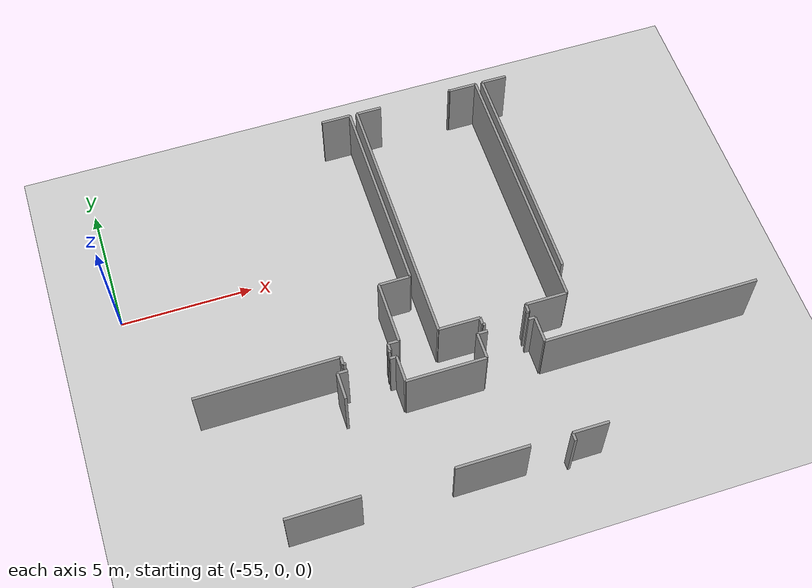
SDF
<sdf version="1.6">
 <world name="default">
  <model name="ground_plane">
   <static>1</static>
   <link name="link">
    <collision name="collision">
     <geometry><plane><normal>0 0 1</normal><size>100 100</size></plane></geometry>
     <surface><friction><ode><mu>100</mu><mu2>50</mu2></ode></friction></surface>
    </collision>
    <visual name="visual">
     <cast_shadows>0</cast_shadows>
     <geometry><plane><normal>0 0 1</normal><size>100 100</size></plane></geometry>
     <material>
      <script><uri>file://media/materials/scripts/gazebo.material</uri><name>Gazebo/Grey</name></script>
     </material>
    </visual>
   </link>
  </model>
  <model name="50055638">
   <static>1</static>
   <link name="Wall_23">
    <collision name="Wall_23_Collision">
     <geometry><box><size>1.12634167731 0.1 2.5</size></box></geometry>
     <pose>0.563170838656 0 1.25 0 0 0</pose>
    </collision>
    <visual name="Wall_23_Visual">
     <pose>0.563170838656 0 1.25 0 0 0</pose>
     <geometry><box><size>1.12634167731 0.1 2.5</size></box></geometry>
     <material>
      <script><uri>file://media/materials/scripts/gazebo.material</uri><name>Gazebo/Grey</name></script>
      <ambient>1 1 1 1</ambient>
     </material>
    </visual>
    <pose>25.0025737327 -15.9551725672 0 0 0 0.0</pose>
   </link>
   <link name="Wall_24">
    <collision name="Wall_24_Collision">
     <geometry><box><size>7.62129906774 0.1 2.5</size></box></geometry>
     <pose>3.81064953387 0 1.25 0 0 0</pose>
    </collision>
    <visual name="Wall_24_Visual">
     <pose>3.81064953387 0 1.25 0 0 0</pose>
     <geometry><box><size>7.62129906774 0.1 2.5</size></box></geometry>
     <material>
      <script><uri>file://media/materials/scripts/gazebo.material</uri><name>Gazebo/Grey</name></script>
      <ambient>1 1 1 1</ambient>
     </material>
    </visual>
    <pose>26.12891541 -15.9551725672 0 0 0 -1.57079632679</pose>
   </link>
   <link name="Wall_25">
    <collision name="Wall_25_Collision">
     <geometry><box><size>1.18734867405 0.1 2.5</size></box></geometry>
     <pose>0.593674337026 0 1.25 0 0 0</pose>
    </collision>
    <visual name="Wall_25_Visual">
     <pose>0.593674337026 0 1.25 0 0 0</pose>
     <geometry><box><size>1.18734867405 0.1 2.5</size></box></geometry>
     <material>
      <script><uri>file://media/materials/scripts/gazebo.material</uri><name>Gazebo/Grey</name></script>
      <ambient>1 1 1 1</ambient>
     </material>
    </visual>
    <pose>26.12891541 -23.5764716349 0 0 0 3.14159265359</pose>
   </link>
   <link name="Wall_26">
    <collision name="Wall_26_Collision">
     <geometry><box><size>2.39058458684 0.1 2.5</size></box></geometry>
     <pose>1.19529229342 0 1.25 0 0 0</pose>
    </collision>
    <visual name="Wall_26_Visual">
     <pose>1.19529229342 0 1.25 0 0 0</pose>
     <geometry><box><size>2.39058458684 0.1 2.5</size></box></geometry>
     <material>
      <script><uri>file://media/materials/scripts/gazebo.material</uri><name>Gazebo/Grey</name></script>
      <ambient>1 1 1 1</ambient>
     </material>
    </visual>
    <pose>24.9415667359 -23.5764716349 0 0 0 -1.57079632679</pose>
   </link>
   <link name="Wall_27">
    <collision name="Wall_27_Collision">
     <geometry><box><size>0.404552647132 0.1 2.5</size></box></geometry>
     <pose>0.202276323566 0 1.25 0 0 0</pose>
    </collision>
    <visual name="Wall_27_Visual">
     <pose>0.202276323566 0 1.25 0 0 0</pose>
     <geometry><box><size>0.404552647132 0.1 2.5</size></box></geometry>
     <material>
      <script><uri>file://media/materials/scripts/gazebo.material</uri><name>Gazebo/Grey</name></script>
      <ambient>1 1 1 1</ambient>
     </material>
    </visual>
    <pose>24.9415667359 -25.9670562218 0 0 0 3.14159265359</pose>
   </link>
   <link name="Wall_28">
    <collision name="Wall_28_Collision">
     <geometry><box><size>0.298425892386 0.1 2.5</size></box></geometry>
     <pose>0.149212946193 0 1.25 0 0 0</pose>
    </collision>
    <visual name="Wall_28_Visual">
     <pose>0.149212946193 0 1.25 0 0 0</pose>
     <geometry><box><size>0.298425892386 0.1 2.5</size></box></geometry>
     <material>
      <script><uri>file://media/materials/scripts/gazebo.material</uri><name>Gazebo/Grey</name></script>
      <ambient>1 1 1 1</ambient>
     </material>
    </visual>
    <pose>24.5370140888 -25.9670562218 0 0 0 -1.57079632679</pose>
   </link>
   <link name="Wall_29">
    <collision name="Wall_29_Collision">
     <geometry><box><size>0.0911292013803 0.1 2.5</size></box></geometry>
     <pose>0.0455646006901 0 1.25 0 0 0</pose>
    </collision>
    <visual name="Wall_29_Visual">
     <pose>0.0455646006901 0 1.25 0 0 0</pose>
     <geometry><box><size>0.0911292013803 0.1 2.5</size></box></geometry>
     <material>
      <script><uri>file://media/materials/scripts/gazebo.material</uri><name>Gazebo/Grey</name></script>
      <ambient>1 1 1 1</ambient>
     </material>
    </visual>
    <pose>24.5370140888 -26.2654821141 0 0 0 3.14159265359</pose>
   </link>
   <link name="Wall_30">
    <collision name="Wall_30_Collision">
     <geometry><box><size>0.104728677737 0.1 2.5</size></box></geometry>
     <pose>0.0523643388684 0 1.25 0 0 0</pose>
    </collision>
    <visual name="Wall_30_Visual">
     <pose>0.0523643388684 0 1.25 0 0 0</pose>
     <geometry><box><size>0.104728677737 0.1 2.5</size></box></geometry>
     <material>
      <script><uri>file://media/materials/scripts/gazebo.material</uri><name>Gazebo/Grey</name></script>
      <ambient>1 1 1 1</ambient>
     </material>
    </visual>
    <pose>22.9052040239 -26.2654821141 0 0 0 3.14159265359</pose>
   </link>
   <link name="Wall_31">
    <collision name="Wall_31_Collision">
     <geometry><box><size>0.300459458944 0.1 2.5</size></box></geometry>
     <pose>0.150229729472 0 1.25 0 0 0</pose>
    </collision>
    <visual name="Wall_31_Visual">
     <pose>0.150229729472 0 1.25 0 0 0</pose>
     <geometry><box><size>0.300459458944 0.1 2.5</size></box></geometry>
     <material>
      <script><uri>file://media/materials/scripts/gazebo.material</uri><name>Gazebo/Grey</name></script>
      <ambient>1 1 1 1</ambient>
     </material>
    </visual>
    <pose>22.8004753462 -26.2654821141 0 0 0 1.57079632679</pose>
   </link>
   <link name="Wall_32">
    <collision name="Wall_32_Collision">
     <geometry><box><size>5.3477716559 0.1 2.5</size></box></geometry>
     <pose>2.67388582795 0 1.25 0 0 0</pose>
    </collision>
    <visual name="Wall_32_Visual">
     <pose>2.67388582795 0 1.25 0 0 0</pose>
     <geometry><box><size>5.3477716559 0.1 2.5</size></box></geometry>
     <material>
      <script><uri>file://media/materials/scripts/gazebo.material</uri><name>Gazebo/Grey</name></script>
      <ambient>1 1 1 1</ambient>
     </material>
    </visual>
    <pose>22.8004753462 -25.9650226552 0 0 0 3.14159265359</pose>
   </link>
   <link name="Wall_133">
    <collision name="Wall_133_Collision">
     <geometry><box><size>10.014044319 0.1 2.5</size></box></geometry>
     <pose>5.00702215952 0 1.25 0 0 0</pose>
    </collision>
    <visual name="Wall_133_Visual">
     <pose>5.00702215952 0 1.25 0 0 0</pose>
     <geometry><box><size>10.014044319 0.1 2.5</size></box></geometry>
     <material>
      <script><uri>file://media/materials/scripts/gazebo.material</uri><name>Gazebo/Grey</name></script>
      <ambient>1 1 1 1</ambient>
     </material>
    </visual>
    <pose>26.4117082595 -25.9676917113 0 0 0 1.57079632679</pose>
   </link>
   <link name="Wall_134">
    <collision name="Wall_134_Collision">
     <geometry><box><size>0.966325408779 0.1 2.5</size></box></geometry>
     <pose>0.483162704389 0 1.25 0 0 0</pose>
    </collision>
    <visual name="Wall_134_Visual">
     <pose>0.483162704389 0 1.25 0 0 0</pose>
     <geometry><box><size>0.966325408779 0.1 2.5</size></box></geometry>
     <material>
      <script><uri>file://media/materials/scripts/gazebo.material</uri><name>Gazebo/Grey</name></script>
      <ambient>1 1 1 1</ambient>
     </material>
    </visual>
    <pose>26.4117082595 -15.9536473923 0 0 0 0.0</pose>
   </link>
   <link name="Wall_135">
    <collision name="Wall_135_Collision">
     <geometry><box><size>0.0665484704653 0.1 2.5</size></box></geometry>
     <pose>0.0332742352326 0 1.25 0 0 0</pose>
    </collision>
    <visual name="Wall_135_Visual">
     <pose>0.0332742352326 0 1.25 0 0 0</pose>
     <geometry><box><size>0.0665484704653 0.1 2.5</size></box></geometry>
     <material>
      <script><uri>file://media/materials/scripts/gazebo.material</uri><name>Gazebo/Grey</name></script>
      <ambient>1 1 1 1</ambient>
     </material>
    </visual>
    <pose>30.1576649572 -15.9536473923 0 0 0 -0.532886069253</pose>
   </link>
   <link name="Wall_136">
    <collision name="Wall_136_Collision">
     <geometry><box><size>1.06546177848 0.1 2.5</size></box></geometry>
     <pose>0.532730889241 0 1.25 0 0 0</pose>
    </collision>
    <visual name="Wall_136_Visual">
     <pose>0.532730889241 0 1.25 0 0 0</pose>
     <geometry><box><size>1.06546177848 0.1 2.5</size></box></geometry>
     <material>
      <script><uri>file://media/materials/scripts/gazebo.material</uri><name>Gazebo/Grey</name></script>
      <ambient>1 1 1 1</ambient>
     </material>
    </visual>
    <pose>30.2149861146 -15.9874554363 0 0 0 0.0</pose>
   </link>
   <link name="Wall_137">
    <collision name="Wall_137_Collision">
     <geometry><box><size>9.97032263804 0.1 2.5</size></box></geometry>
     <pose>4.98516131902 0 1.25 0 0 0</pose>
    </collision>
    <visual name="Wall_137_Visual">
     <pose>4.98516131902 0 1.25 0 0 0</pose>
     <geometry><box><size>9.97032263804 0.1 2.5</size></box></geometry>
     <material>
      <script><uri>file://media/materials/scripts/gazebo.material</uri><name>Gazebo/Grey</name></script>
      <ambient>1 1 1 1</ambient>
     </material>
    </visual>
    <pose>31.280447893 -15.9874554363 0 0 0 -1.57079632679</pose>
   </link>
   <link name="Wall_138">
    <collision name="Wall_138_Collision">
     <geometry><box><size>1.57575988663 0.1 2.5</size></box></geometry>
     <pose>0.787879943314 0 1.25 0 0 0</pose>
    </collision>
    <visual name="Wall_138_Visual">
     <pose>0.787879943314 0 1.25 0 0 0</pose>
     <geometry><box><size>1.57575988663 0.1 2.5</size></box></geometry>
     <material>
      <script><uri>file://media/materials/scripts/gazebo.material</uri><name>Gazebo/Grey</name></script>
      <ambient>1 1 1 1</ambient>
     </material>
    </visual>
    <pose>31.280447893 -25.9577780743 0 0 0 3.14159265359</pose>
   </link>
   <link name="Wall_139">
    <collision name="Wall_139_Collision">
     <geometry><box><size>0.314058935301 0.1 2.5</size></box></geometry>
     <pose>0.15702946765 0 1.25 0 0 0</pose>
    </collision>
    <visual name="Wall_139_Visual">
     <pose>0.15702946765 0 1.25 0 0 0</pose>
     <geometry><box><size>0.314058935301 0.1 2.5</size></box></geometry>
     <material>
      <script><uri>file://media/materials/scripts/gazebo.material</uri><name>Gazebo/Grey</name></script>
      <ambient>1 1 1 1</ambient>
     </material>
    </visual>
    <pose>29.7046880064 -25.9577780743 0 0 0 -1.57079632679</pose>
   </link>
   <link name="Wall_140">
    <collision name="Wall_140_Collision">
     <geometry><box><size>0.105872558926 0.1 2.5</size></box></geometry>
     <pose>0.0529362794629 0 1.25 0 0 0</pose>
    </collision>
    <visual name="Wall_140_Visual">
     <pose>0.0529362794629 0 1.25 0 0 0</pose>
     <geometry><box><size>0.105872558926 0.1 2.5</size></box></geometry>
     <material>
      <script><uri>file://media/materials/scripts/gazebo.material</uri><name>Gazebo/Grey</name></script>
      <ambient>1 1 1 1</ambient>
     </material>
    </visual>
    <pose>29.7046880064 -26.2718370096 0 0 0 3.14159265359</pose>
   </link>
   <link name="Wall_141">
    <collision name="Wall_141_Collision">
     <geometry><box><size>0.0955776282259 0.1 2.5</size></box></geometry>
     <pose>0.047788814113 0 1.25 0 0 0</pose>
    </collision>
    <visual name="Wall_141_Visual">
     <pose>0.047788814113 0 1.25 0 0 0</pose>
     <geometry><box><size>0.0955776282259 0.1 2.5</size></box></geometry>
     <material>
      <script><uri>file://media/materials/scripts/gazebo.material</uri><name>Gazebo/Grey</name></script>
      <ambient>1 1 1 1</ambient>
     </material>
    </visual>
    <pose>28.0648707732 -26.2718370096 0 0 0 3.14159265359</pose>
   </link>
   <link name="Wall_142">
    <collision name="Wall_142_Collision">
     <geometry><box><size>0.298171696566 0.1 2.5</size></box></geometry>
     <pose>0.149085848283 0 1.25 0 0 0</pose>
    </collision>
    <visual name="Wall_142_Visual">
     <pose>0.149085848283 0 1.25 0 0 0</pose>
     <geometry><box><size>0.298171696566 0.1 2.5</size></box></geometry>
     <material>
      <script><uri>file://media/materials/scripts/gazebo.material</uri><name>Gazebo/Grey</name></script>
      <ambient>1 1 1 1</ambient>
     </material>
    </visual>
    <pose>27.969293145 -26.2718370096 0 0 0 1.57079632679</pose>
   </link>
   <link name="Wall_143">
    <collision name="Wall_143_Collision">
     <geometry><box><size>1.55759634036 0.1 2.5</size></box></geometry>
     <pose>0.778798170181 0 1.25 0 0 0</pose>
    </collision>
    <visual name="Wall_143_Visual">
     <pose>0.778798170181 0 1.25 0 0 0</pose>
     <geometry><box><size>1.55759634036 0.1 2.5</size></box></geometry>
     <material>
      <script><uri>file://media/materials/scripts/gazebo.material</uri><name>Gazebo/Grey</name></script>
      <ambient>1 1 1 1</ambient>
     </material>
    </visual>
    <pose>27.969293145 -25.9736653131 0 0 0 3.13775750307</pose>
   </link>
   <link name="Wall_144">
    <collision name="Wall_144_Collision">
     <geometry><box><size>8.8165278122 0.1 2.5</size></box></geometry>
     <pose>4.4082639061 0 1.25 0 0 0</pose>
    </collision>
    <visual name="Wall_144_Visual">
     <pose>4.4082639061 0 1.25 0 0 0</pose>
     <geometry><box><size>8.8165278122 0.1 2.5</size></box></geometry>
     <material>
      <script><uri>file://media/materials/scripts/gazebo.material</uri><name>Gazebo/Grey</name></script>
      <ambient>1 1 1 1</ambient>
     </material>
    </visual>
    <pose>31.5561232596 -24.7980096467 0 0 0 1.57079632679</pose>
   </link>
   <link name="Wall_145">
    <collision name="Wall_145_Collision">
     <geometry><box><size>0.980560374685 0.1 2.5</size></box></geometry>
     <pose>0.490280187342 0 1.25 0 0 0</pose>
    </collision>
    <visual name="Wall_145_Visual">
     <pose>0.490280187342 0 1.25 0 0 0</pose>
     <geometry><box><size>0.980560374685 0.1 2.5</size></box></geometry>
     <material>
      <script><uri>file://media/materials/scripts/gazebo.material</uri><name>Gazebo/Grey</name></script>
      <ambient>1 1 1 1</ambient>
     </material>
    </visual>
    <pose>31.5561232596 -15.9814818345 0 0 0 0.0</pose>
   </link>
   <link name="Wall_180">
    <collision name="Wall_180_Collision">
     <geometry><box><size>1.01818135601 0.1 2.5</size></box></geometry>
     <pose>0.509090678004 0 1.25 0 0 0</pose>
    </collision>
    <visual name="Wall_180_Visual">
     <pose>0.509090678004 0 1.25 0 0 0</pose>
     <geometry><box><size>1.01818135601 0.1 2.5</size></box></geometry>
     <material>
      <script><uri>file://media/materials/scripts/gazebo.material</uri><name>Gazebo/Grey</name></script>
      <ambient>1 1 1 1</ambient>
     </material>
    </visual>
    <pose>22.5133611678 -27.5618807949 0 0 0 1.57079632679</pose>
   </link>
   <link name="Wall_181">
    <collision name="Wall_181_Collision">
     <geometry><box><size>0.373667855032 0.1 2.5</size></box></geometry>
     <pose>0.186833927516 0 1.25 0 0 0</pose>
    </collision>
    <visual name="Wall_181_Visual">
     <pose>0.186833927516 0 1.25 0 0 0</pose>
     <geometry><box><size>0.373667855032 0.1 2.5</size></box></geometry>
     <material>
      <script><uri>file://media/materials/scripts/gazebo.material</uri><name>Gazebo/Grey</name></script>
      <ambient>1 1 1 1</ambient>
     </material>
    </visual>
    <pose>22.5133611678 -26.5436994389 0 0 0 0.0</pose>
   </link>
   <link name="Wall_182">
    <collision name="Wall_182_Collision">
     <geometry><box><size>0.249366099175 0.1 2.5</size></box></geometry>
     <pose>0.124683049587 0 1.25 0 0 0</pose>
    </collision>
    <visual name="Wall_182_Visual">
     <pose>0.124683049587 0 1.25 0 0 0</pose>
     <geometry><box><size>0.249366099175 0.1 2.5</size></box></geometry>
     <material>
      <script><uri>file://media/materials/scripts/gazebo.material</uri><name>Gazebo/Grey</name></script>
      <ambient>1 1 1 1</ambient>
     </material>
    </visual>
    <pose>24.4261847114 -26.5436994389 0 0 0 0.0</pose>
   </link>
   <link name="Wall_183">
    <collision name="Wall_183_Collision">
     <geometry><box><size>1.0129703417 0.1 2.5</size></box></geometry>
     <pose>0.506485170851 0 1.25 0 0 0</pose>
    </collision>
    <visual name="Wall_183_Visual">
     <pose>0.506485170851 0 1.25 0 0 0</pose>
     <geometry><box><size>1.0129703417 0.1 2.5</size></box></geometry>
     <material>
      <script><uri>file://media/materials/scripts/gazebo.material</uri><name>Gazebo/Grey</name></script>
      <ambient>1 1 1 1</ambient>
     </material>
    </visual>
    <pose>24.6755508106 -26.5436994389 0 0 0 -1.57079632679</pose>
   </link>
   <link name="Wall_184">
    <collision name="Wall_184_Collision">
     <geometry><box><size>2.9950622462 0.1 2.5</size></box></geometry>
     <pose>1.4975311231 0 1.25 0 0 0</pose>
    </collision>
    <visual name="Wall_184_Visual">
     <pose>1.4975311231 0 1.25 0 0 0</pose>
     <geometry><box><size>2.9950622462 0.1 2.5</size></box></geometry>
     <material>
      <script><uri>file://media/materials/scripts/gazebo.material</uri><name>Gazebo/Grey</name></script>
      <ambient>1 1 1 1</ambient>
     </material>
    </visual>
    <pose>24.6755508106 -27.5566697806 0 0 0 0.0</pose>
   </link>
   <link name="Wall_185">
    <collision name="Wall_185_Collision">
     <geometry><box><size>1.00280250891 0.1 2.5</size></box></geometry>
     <pose>0.501401254456 0 1.25 0 0 0</pose>
    </collision>
    <visual name="Wall_185_Visual">
     <pose>0.501401254456 0 1.25 0 0 0</pose>
     <geometry><box><size>1.00280250891 0.1 2.5</size></box></geometry>
     <material>
      <script><uri>file://media/materials/scripts/gazebo.material</uri><name>Gazebo/Grey</name></script>
      <ambient>1 1 1 1</ambient>
     </material>
    </visual>
    <pose>27.6706130568 -27.5566697806 0 0 0 1.57079632679</pose>
   </link>
   <link name="Wall_186">
    <collision name="Wall_186_Collision">
     <geometry><box><size>0.37570142159 0.1 2.5</size></box></geometry>
     <pose>0.187850710795 0 1.25 0 0 0</pose>
    </collision>
    <visual name="Wall_186_Visual">
     <pose>0.187850710795 0 1.25 0 0 0</pose>
     <geometry><box><size>0.37570142159 0.1 2.5</size></box></geometry>
     <material>
      <script><uri>file://media/materials/scripts/gazebo.material</uri><name>Gazebo/Grey</name></script>
      <ambient>1 1 1 1</ambient>
     </material>
    </visual>
    <pose>27.6706130568 -26.5538672717 0 0 0 0.0</pose>
   </link>
   <link name="Wall_187">
    <collision name="Wall_187_Collision">
     <geometry><box><size>0.245680259788 0.1 2.5</size></box></geometry>
     <pose>0.122840129894 0 1.25 0 0 0</pose>
    </collision>
    <visual name="Wall_187_Visual">
     <pose>0.122840129894 0 1.25 0 0 0</pose>
     <geometry><box><size>0.245680259788 0.1 2.5</size></box></geometry>
     <material>
      <script><uri>file://media/materials/scripts/gazebo.material</uri><name>Gazebo/Grey</name></script>
      <ambient>1 1 1 1</ambient>
     </material>
    </visual>
    <pose>29.5890289084 -26.5538672717 0 0 0 0.0</pose>
   </link>
   <link name="Wall_188">
    <collision name="Wall_188_Collision">
     <geometry><box><size>1.00712383785 0.1 2.5</size></box></geometry>
     <pose>0.503561918924 0 1.25 0 0 0</pose>
    </collision>
    <visual name="Wall_188_Visual">
     <pose>0.503561918924 0 1.25 0 0 0</pose>
     <geometry><box><size>1.00712383785 0.1 2.5</size></box></geometry>
     <material>
      <script><uri>file://media/materials/scripts/gazebo.material</uri><name>Gazebo/Grey</name></script>
      <ambient>1 1 1 1</ambient>
     </material>
    </visual>
    <pose>29.8347091682 -26.5538672717 0 0 0 -1.57079632679</pose>
   </link>
   <link name="Wall_189">
    <collision name="Wall_189_Collision">
     <geometry><box><size>8.16845556975 0.1 2.5</size></box></geometry>
     <pose>4.08422778487 0 1.25 0 0 0</pose>
    </collision>
    <visual name="Wall_189_Visual">
     <pose>4.08422778487 0 1.25 0 0 0</pose>
     <geometry><box><size>8.16845556975 0.1 2.5</size></box></geometry>
     <material>
      <script><uri>file://media/materials/scripts/gazebo.material</uri><name>Gazebo/Grey</name></script>
      <ambient>1 1 1 1</ambient>
     </material>
    </visual>
    <pose>29.8347091682 -27.5609911095 0 0 0 0.0</pose>
   </link>
   <link name="Wall_228">
    <collision name="Wall_228_Collision">
     <geometry><box><size>1.34393329902 0.1 2.5</size></box></geometry>
     <pose>0.671966649508 0 1.25 0 0 0</pose>
    </collision>
    <visual name="Wall_228_Visual">
     <pose>0.671966649508 0 1.25 0 0 0</pose>
     <geometry><box><size>1.34393329902 0.1 2.5</size></box></geometry>
     <material>
      <script><uri>file://media/materials/scripts/gazebo.material</uri><name>Gazebo/Grey</name></script>
      <ambient>1 1 1 1</ambient>
     </material>
    </visual>
    <pose>30.8282335297 -31.1591329381 0 0 0 3.14159265359</pose>
   </link>
   <link name="Wall_229">
    <collision name="Wall_229_Collision">
     <geometry><box><size>0.30478078788 0.1 2.5</size></box></geometry>
     <pose>0.15239039394 0 1.25 0 0 0</pose>
    </collision>
    <visual name="Wall_229_Visual">
     <pose>0.15239039394 0 1.25 0 0 0</pose>
     <geometry><box><size>0.30478078788 0.1 2.5</size></box></geometry>
     <material>
      <script><uri>file://media/materials/scripts/gazebo.material</uri><name>Gazebo/Grey</name></script>
      <ambient>1 1 1 1</ambient>
     </material>
    </visual>
    <pose>29.4843002307 -31.1591329381 0 0 0 -1.57079632679</pose>
   </link>
   <link name="Wall_233">
    <collision name="Wall_233_Collision">
     <geometry><box><size>2.71201520091 0.1 2.5</size></box></geometry>
     <pose>1.35600760046 0 1.25 0 0 0</pose>
    </collision>
    <visual name="Wall_233_Visual">
     <pose>1.35600760046 0 1.25 0 0 0</pose>
     <geometry><box><size>2.71201520091 0.1 2.5</size></box></geometry>
     <material>
      <script><uri>file://media/materials/scripts/gazebo.material</uri><name>Gazebo/Grey</name></script>
      <ambient>1 1 1 1</ambient>
     </material>
    </visual>
    <pose>27.9704370262 -31.1591329381 0 0 0 3.14159265359</pose>
   </link>
   <link name="Wall_234">
    <collision name="Wall_234_Collision">
     <geometry><box><size>2.68570593357 0.1 2.5</size></box></geometry>
     <pose>1.34285296678 0 1.25 0 0 0</pose>
    </collision>
    <visual name="Wall_234_Visual">
     <pose>1.34285296678 0 1.25 0 0 0</pose>
     <geometry><box><size>2.68570593357 0.1 2.5</size></box></geometry>
     <material>
      <script><uri>file://media/materials/scripts/gazebo.material</uri><name>Gazebo/Grey</name></script>
      <ambient>1 1 1 1</ambient>
     </material>
    </visual>
    <pose>21.9875571146 -31.1591329381 0 0 0 3.14159265359</pose>
   </link>
   <pose>-70.65 20.8744774687 0 0 0 0</pose>
  </model>
 </world>
</sdf>
